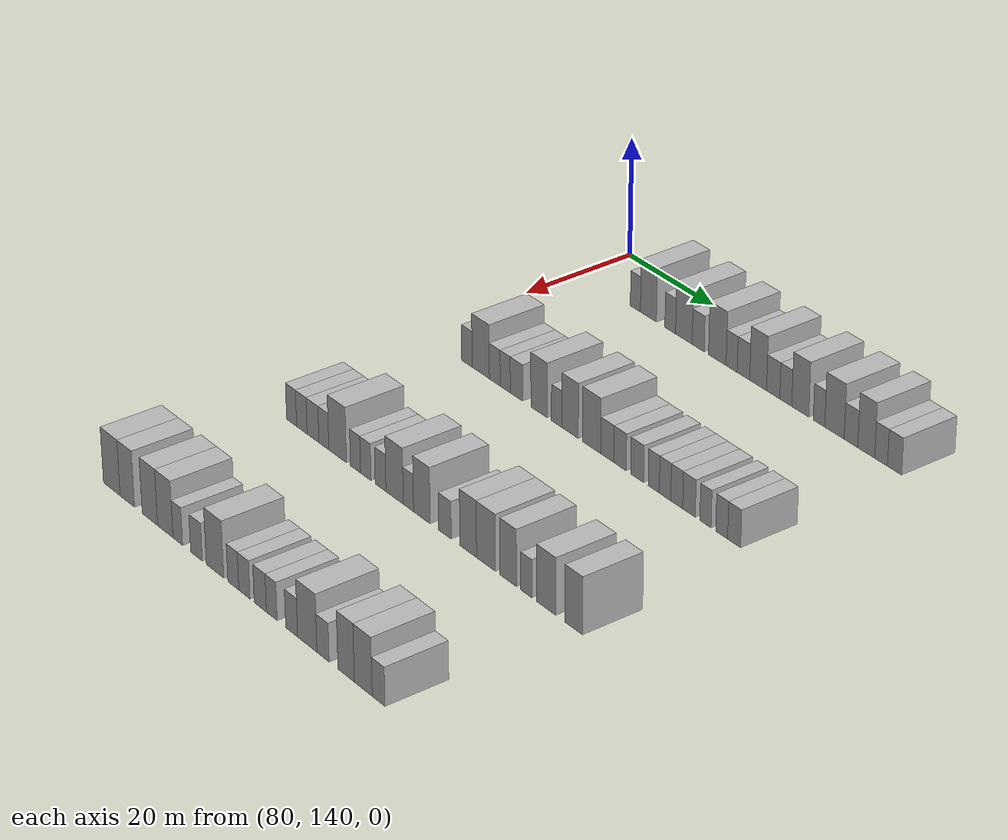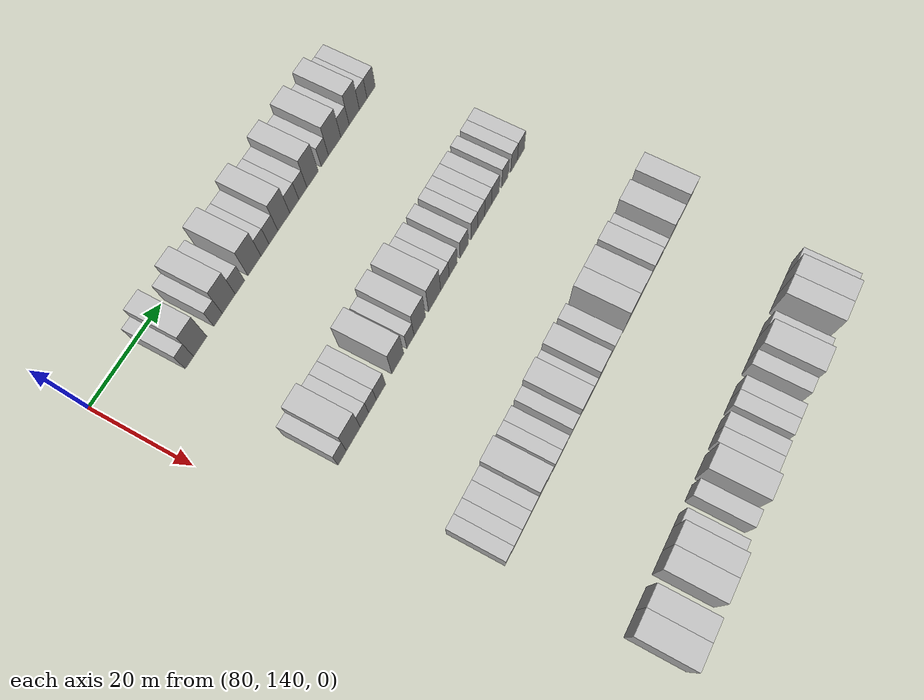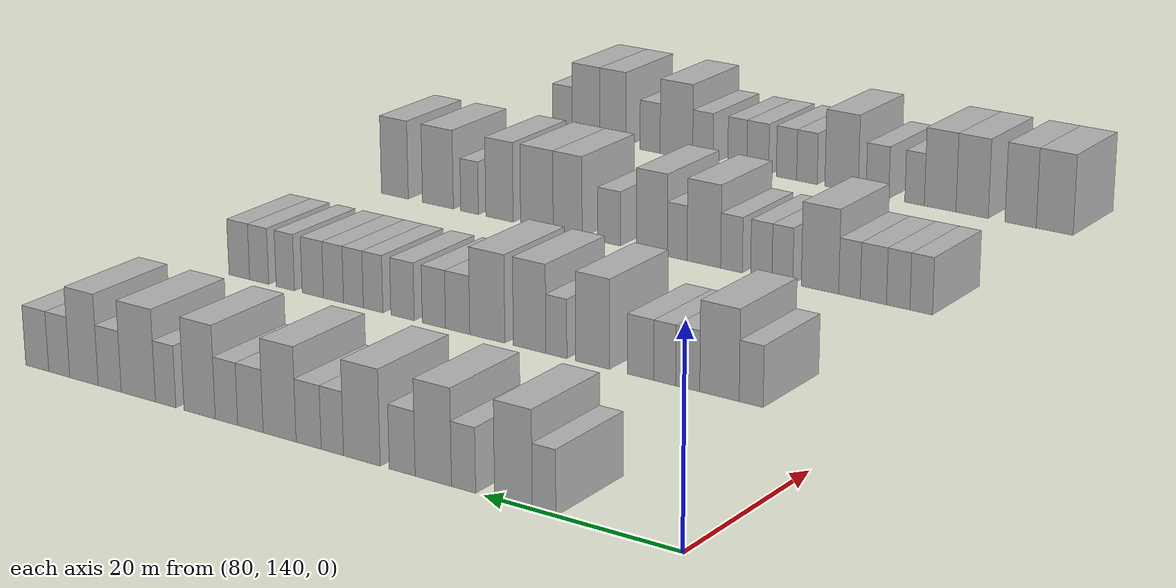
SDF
<sdf version="1.6">
 <world name="default">
  <model name="building_606">
   <static>1</static>
   <pose>85.0000 153.8145 0 0.000000 0.000000 0.000000</pose>
   <link name="link">
    <pose>0 0 3.00 0 0 0</pose>
    <collision name="collision"><geometry><box><size>10.0000 2.4219 6.0000</size></box></geometry></collision>
    <visual name="visual">
     <cast_shadows>0</cast_shadows>
     <geometry><box><size>10.0000 2.4219 6.0000</size></box></geometry>
     <material>
      <script>
       <uri>model://HANNAS_wall/materials/scripts</uri>
       <uri>model://HANNAS_wall/materials/textures</uri>
       <name>vrc/HANNAS_wall</name>
      </script>
     </material>
    </visual>
   </link>
  </model>
  <model name="building_607">
   <static>1</static>
   <pose>85.0000 156.9660 0 0.000000 0.000000 0.000000</pose>
   <link name="link">
    <pose>0 0 4.50 0 0 0</pose>
    <collision name="collision"><geometry><box><size>10.0000 3.8812 9.0000</size></box></geometry></collision>
    <visual name="visual">
     <cast_shadows>0</cast_shadows>
     <geometry><box><size>10.0000 3.8812 9.0000</size></box></geometry>
     <material>
      <script>
       <uri>model://HANNAS_wall/materials/scripts</uri>
       <uri>model://HANNAS_wall/materials/textures</uri>
       <name>vrc/HANNAS_wall</name>
      </script>
     </material>
    </visual>
   </link>
  </model>
  <model name="building_608">
   <static>1</static>
   <pose>85.0000 162.1799 0 0.000000 0.000000 0.000000</pose>
   <link name="link">
    <pose>0 0 3.00 0 0 0</pose>
    <collision name="collision"><geometry><box><size>10.0000 2.5465 6.0000</size></box></geometry></collision>
    <visual name="visual">
     <cast_shadows>0</cast_shadows>
     <geometry><box><size>10.0000 2.5465 6.0000</size></box></geometry>
     <material>
      <script>
       <uri>model://HANNAS_wall/materials/scripts</uri>
       <uri>model://HANNAS_wall/materials/textures</uri>
       <name>vrc/HANNAS_wall</name>
      </script>
     </material>
    </visual>
   </link>
  </model>
  <model name="building_609">
   <static>1</static>
   <pose>85.0000 165.4058 0 0.000000 0.000000 0.000000</pose>
   <link name="link">
    <pose>0 0 4.50 0 0 0</pose>
    <collision name="collision"><geometry><box><size>10.0000 3.9052 9.0000</size></box></geometry></collision>
    <visual name="visual">
     <cast_shadows>0</cast_shadows>
     <geometry><box><size>10.0000 3.9052 9.0000</size></box></geometry>
     <material>
      <script>
       <uri>model://HANNAS_wall/materials/scripts</uri>
       <uri>model://HANNAS_wall/materials/textures</uri>
       <name>vrc/HANNAS_wall</name>
      </script>
     </material>
    </visual>
   </link>
  </model>
  <model name="building_610">
   <static>1</static>
   <pose>85.0000 168.7690 0 0.000000 0.000000 0.000000</pose>
   <link name="link">
    <pose>0 0 3.00 0 0 0</pose>
    <collision name="collision"><geometry><box><size>10.0000 2.8212 6.0000</size></box></geometry></collision>
    <visual name="visual">
     <cast_shadows>0</cast_shadows>
     <geometry><box><size>10.0000 2.8212 6.0000</size></box></geometry>
     <material>
      <script>
       <uri>model://HANNAS_wall/materials/scripts</uri>
       <uri>model://HANNAS_wall/materials/textures</uri>
       <name>vrc/HANNAS_wall</name>
      </script>
     </material>
    </visual>
   </link>
  </model>
  <model name="building_611">
   <static>1</static>
   <pose>85.0000 173.2157 0 0.000000 0.000000 0.000000</pose>
   <link name="link">
    <pose>0 0 4.50 0 0 0</pose>
    <collision name="collision"><geometry><box><size>10.0000 4.0721 9.0000</size></box></geometry></collision>
    <visual name="visual">
     <cast_shadows>0</cast_shadows>
     <geometry><box><size>10.0000 4.0721 9.0000</size></box></geometry>
     <material>
      <script>
       <uri>model://HANNAS_wall/materials/scripts</uri>
       <uri>model://HANNAS_wall/materials/textures</uri>
       <name>vrc/HANNAS_wall</name>
      </script>
     </material>
    </visual>
   </link>
  </model>
  <model name="building_612">
   <static>1</static>
   <pose>85.0000 176.5106 0 0.000000 0.000000 0.000000</pose>
   <link name="link">
    <pose>0 0 3.00 0 0 0</pose>
    <collision name="collision"><geometry><box><size>10.0000 2.5177 6.0000</size></box></geometry></collision>
    <visual name="visual">
     <cast_shadows>0</cast_shadows>
     <geometry><box><size>10.0000 2.5177 6.0000</size></box></geometry>
     <material>
      <script>
       <uri>model://HANNAS_wall/materials/scripts</uri>
       <uri>model://HANNAS_wall/materials/textures</uri>
       <name>vrc/HANNAS_wall</name>
      </script>
     </material>
    </visual>
   </link>
  </model>
  <model name="building_613">
   <static>1</static>
   <pose>85.0000 179.1966 0 0.000000 0.000000 0.000000</pose>
   <link name="link">
    <pose>0 0 3.00 0 0 0</pose>
    <collision name="collision"><geometry><box><size>10.0000 2.8543 6.0000</size></box></geometry></collision>
    <visual name="visual">
     <cast_shadows>0</cast_shadows>
     <geometry><box><size>10.0000 2.8543 6.0000</size></box></geometry>
     <material>
      <script>
       <uri>model://HANNAS_wall/materials/scripts</uri>
       <uri>model://HANNAS_wall/materials/textures</uri>
       <name>vrc/HANNAS_wall</name>
      </script>
     </material>
    </visual>
   </link>
  </model>
  <model name="building_614">
   <static>1</static>
   <pose>85.0000 182.5298 0 0.000000 0.000000 0.000000</pose>
   <link name="link">
    <pose>0 0 4.50 0 0 0</pose>
    <collision name="collision"><geometry><box><size>10.0000 3.8122 9.0000</size></box></geometry></collision>
    <visual name="visual">
     <cast_shadows>0</cast_shadows>
     <geometry><box><size>10.0000 3.8122 9.0000</size></box></geometry>
     <material>
      <script>
       <uri>model://HANNAS_wall/materials/scripts</uri>
       <uri>model://HANNAS_wall/materials/textures</uri>
       <name>vrc/HANNAS_wall</name>
      </script>
     </material>
    </visual>
   </link>
  </model>
  <model name="building_615">
   <static>1</static>
   <pose>85.0000 185.9230 0 0.000000 0.000000 0.000000</pose>
   <link name="link">
    <pose>0 0 3.00 0 0 0</pose>
    <collision name="collision"><geometry><box><size>10.0000 2.9741 6.0000</size></box></geometry></collision>
    <visual name="visual">
     <cast_shadows>0</cast_shadows>
     <geometry><box><size>10.0000 2.9741 6.0000</size></box></geometry>
     <material>
      <script>
       <uri>model://HANNAS_wall/materials/scripts</uri>
       <uri>model://HANNAS_wall/materials/textures</uri>
       <name>vrc/HANNAS_wall</name>
      </script>
     </material>
    </visual>
   </link>
  </model>
  <model name="building_616">
   <static>1</static>
   <pose>85.0000 188.7408 0 0.000000 0.000000 0.000000</pose>
   <link name="link">
    <pose>0 0 3.00 0 0 0</pose>
    <collision name="collision"><geometry><box><size>10.0000 2.6615 6.0000</size></box></geometry></collision>
    <visual name="visual">
     <cast_shadows>0</cast_shadows>
     <geometry><box><size>10.0000 2.6615 6.0000</size></box></geometry>
     <material>
      <script>
       <uri>model://HANNAS_wall/materials/scripts</uri>
       <uri>model://HANNAS_wall/materials/textures</uri>
       <name>vrc/HANNAS_wall</name>
      </script>
     </material>
    </visual>
   </link>
  </model>
  <model name="building_617">
   <static>1</static>
   <pose>85.0000 191.9446 0 0.000000 0.000000 0.000000</pose>
   <link name="link">
    <pose>0 0 4.50 0 0 0</pose>
    <collision name="collision"><geometry><box><size>10.0000 3.7462 9.0000</size></box></geometry></collision>
    <visual name="visual">
     <cast_shadows>0</cast_shadows>
     <geometry><box><size>10.0000 3.7462 9.0000</size></box></geometry>
     <material>
      <script>
       <uri>model://HANNAS_wall/materials/scripts</uri>
       <uri>model://HANNAS_wall/materials/textures</uri>
       <name>vrc/HANNAS_wall</name>
      </script>
     </material>
    </visual>
   </link>
  </model>
  <model name="building_618">
   <static>1</static>
   <pose>85.0000 196.0615 0 0.000000 0.000000 0.000000</pose>
   <link name="link">
    <pose>0 0 3.00 0 0 0</pose>
    <collision name="collision"><geometry><box><size>10.0000 2.4877 6.0000</size></box></geometry></collision>
    <visual name="visual">
     <cast_shadows>0</cast_shadows>
     <geometry><box><size>10.0000 2.4877 6.0000</size></box></geometry>
     <material>
      <script>
       <uri>model://HANNAS_wall/materials/scripts</uri>
       <uri>model://HANNAS_wall/materials/textures</uri>
       <name>vrc/HANNAS_wall</name>
      </script>
     </material>
    </visual>
   </link>
  </model>
  <model name="building_619">
   <static>1</static>
   <pose>85.0000 199.4239 0 0.000000 0.000000 0.000000</pose>
   <link name="link">
    <pose>0 0 4.50 0 0 0</pose>
    <collision name="collision"><geometry><box><size>10.0000 4.2370 9.0000</size></box></geometry></collision>
    <visual name="visual">
     <cast_shadows>0</cast_shadows>
     <geometry><box><size>10.0000 4.2370 9.0000</size></box></geometry>
     <material>
      <script>
       <uri>model://HANNAS_wall/materials/scripts</uri>
       <uri>model://HANNAS_wall/materials/textures</uri>
       <name>vrc/HANNAS_wall</name>
      </script>
     </material>
    </visual>
   </link>
  </model>
  <model name="building_620">
   <static>1</static>
   <pose>85.0000 202.9900 0 0.000000 0.000000 0.000000</pose>
   <link name="link">
    <pose>0 0 3.00 0 0 0</pose>
    <collision name="collision"><geometry><box><size>10.0000 2.8953 6.0000</size></box></geometry></collision>
    <visual name="visual">
     <cast_shadows>0</cast_shadows>
     <geometry><box><size>10.0000 2.8953 6.0000</size></box></geometry>
     <material>
      <script>
       <uri>model://HANNAS_wall/materials/scripts</uri>
       <uri>model://HANNAS_wall/materials/textures</uri>
       <name>vrc/HANNAS_wall</name>
      </script>
     </material>
    </visual>
   </link>
  </model>
  <model name="building_621">
   <static>1</static>
   <pose>85.0000 206.2494 0 0.000000 0.000000 0.000000</pose>
   <link name="link">
    <pose>0 0 4.50 0 0 0</pose>
    <collision name="collision"><geometry><box><size>10.0000 3.6236 9.0000</size></box></geometry></collision>
    <visual name="visual">
     <cast_shadows>0</cast_shadows>
     <geometry><box><size>10.0000 3.6236 9.0000</size></box></geometry>
     <material>
      <script>
       <uri>model://HANNAS_wall/materials/scripts</uri>
       <uri>model://HANNAS_wall/materials/textures</uri>
       <name>vrc/HANNAS_wall</name>
      </script>
     </material>
    </visual>
   </link>
  </model>
  <model name="building_622">
   <static>1</static>
   <pose>85.0000 209.4123 0 0.000000 0.000000 0.000000</pose>
   <link name="link">
    <pose>0 0 3.00 0 0 0</pose>
    <collision name="collision"><geometry><box><size>10.0000 2.7021 6.0000</size></box></geometry></collision>
    <visual name="visual">
     <cast_shadows>0</cast_shadows>
     <geometry><box><size>10.0000 2.7021 6.0000</size></box></geometry>
     <material>
      <script>
       <uri>model://HANNAS_wall/materials/scripts</uri>
       <uri>model://HANNAS_wall/materials/textures</uri>
       <name>vrc/HANNAS_wall</name>
      </script>
     </material>
    </visual>
   </link>
  </model>
  <model name="building_623">
   <static>1</static>
   <pose>85.0000 212.2532 0 0.000000 0.000000 0.000000</pose>
   <link name="link">
    <pose>0 0 3.00 0 0 0</pose>
    <collision name="collision"><geometry><box><size>10.0000 2.9798 6.0000</size></box></geometry></collision>
    <visual name="visual">
     <cast_shadows>0</cast_shadows>
     <geometry><box><size>10.0000 2.9798 6.0000</size></box></geometry>
     <material>
      <script>
       <uri>model://HANNAS_wall/materials/scripts</uri>
       <uri>model://HANNAS_wall/materials/textures</uri>
       <name>vrc/HANNAS_wall</name>
      </script>
     </material>
    </visual>
   </link>
  </model>
  <model name="building_827">
   <static>1</static>
   <pose>115.0000 152.0088 0 0.000000 0.000000 0.000000</pose>
   <link name="link">
    <pose>0 0 3.00 0 0 0</pose>
    <collision name="collision"><geometry><box><size>10.0000 2.5604 6.0000</size></box></geometry></collision>
    <visual name="visual">
     <cast_shadows>0</cast_shadows>
     <geometry><box><size>10.0000 2.5604 6.0000</size></box></geometry>
     <material>
      <script>
       <uri>model://HANNAS_wall/materials/scripts</uri>
       <uri>model://HANNAS_wall/materials/textures</uri>
       <name>vrc/HANNAS_wall</name>
      </script>
     </material>
    </visual>
   </link>
  </model>
  <model name="building_828">
   <static>1</static>
   <pose>115.0000 155.4234 0 0.000000 0.000000 0.000000</pose>
   <link name="link">
    <pose>0 0 4.50 0 0 0</pose>
    <collision name="collision"><geometry><box><size>10.0000 4.2689 9.0000</size></box></geometry></collision>
    <visual name="visual">
     <cast_shadows>0</cast_shadows>
     <geometry><box><size>10.0000 4.2689 9.0000</size></box></geometry>
     <material>
      <script>
       <uri>model://HANNAS_wall/materials/scripts</uri>
       <uri>model://HANNAS_wall/materials/textures</uri>
       <name>vrc/HANNAS_wall</name>
      </script>
     </material>
    </visual>
   </link>
  </model>
  <model name="building_829">
   <static>1</static>
   <pose>115.0000 158.8772 0 0.000000 0.000000 0.000000</pose>
   <link name="link">
    <pose>0 0 3.00 0 0 0</pose>
    <collision name="collision"><geometry><box><size>10.0000 2.6388 6.0000</size></box></geometry></collision>
    <visual name="visual">
     <cast_shadows>0</cast_shadows>
     <geometry><box><size>10.0000 2.6388 6.0000</size></box></geometry>
     <material>
      <script>
       <uri>model://HANNAS_wall/materials/scripts</uri>
       <uri>model://HANNAS_wall/materials/textures</uri>
       <name>vrc/HANNAS_wall</name>
      </script>
     </material>
    </visual>
   </link>
  </model>
  <model name="building_830">
   <static>1</static>
   <pose>115.0000 161.4028 0 0.000000 0.000000 0.000000</pose>
   <link name="link">
    <pose>0 0 3.00 0 0 0</pose>
    <collision name="collision"><geometry><box><size>10.0000 2.4124 6.0000</size></box></geometry></collision>
    <visual name="visual">
     <cast_shadows>0</cast_shadows>
     <geometry><box><size>10.0000 2.4124 6.0000</size></box></geometry>
     <material>
      <script>
       <uri>model://HANNAS_wall/materials/scripts</uri>
       <uri>model://HANNAS_wall/materials/textures</uri>
       <name>vrc/HANNAS_wall</name>
      </script>
     </material>
    </visual>
   </link>
  </model>
  <model name="building_831">
   <static>1</static>
   <pose>115.0000 164.0922 0 0.000000 0.000000 0.000000</pose>
   <link name="link">
    <pose>0 0 3.00 0 0 0</pose>
    <collision name="collision"><geometry><box><size>10.0000 2.9664 6.0000</size></box></geometry></collision>
    <visual name="visual">
     <cast_shadows>0</cast_shadows>
     <geometry><box><size>10.0000 2.9664 6.0000</size></box></geometry>
     <material>
      <script>
       <uri>model://HANNAS_wall/materials/scripts</uri>
       <uri>model://HANNAS_wall/materials/textures</uri>
       <name>vrc/HANNAS_wall</name>
      </script>
     </material>
    </visual>
   </link>
  </model>
  <model name="building_832">
   <static>1</static>
   <pose>115.0000 169.5255 0 0.000000 0.000000 0.000000</pose>
   <link name="link">
    <pose>0 0 4.50 0 0 0</pose>
    <collision name="collision"><geometry><box><size>10.0000 3.9003 9.0000</size></box></geometry></collision>
    <visual name="visual">
     <cast_shadows>0</cast_shadows>
     <geometry><box><size>10.0000 3.9003 9.0000</size></box></geometry>
     <material>
      <script>
       <uri>model://HANNAS_wall/materials/scripts</uri>
       <uri>model://HANNAS_wall/materials/textures</uri>
       <name>vrc/HANNAS_wall</name>
      </script>
     </material>
    </visual>
   </link>
  </model>
  <model name="building_833">
   <static>1</static>
   <pose>115.0000 173.6977 0 0.000000 0.000000 0.000000</pose>
   <link name="link">
    <pose>0 0 3.00 0 0 0</pose>
    <collision name="collision"><geometry><box><size>10.0000 2.4441 6.0000</size></box></geometry></collision>
    <visual name="visual">
     <cast_shadows>0</cast_shadows>
     <geometry><box><size>10.0000 2.4441 6.0000</size></box></geometry>
     <material>
      <script>
       <uri>model://HANNAS_wall/materials/scripts</uri>
       <uri>model://HANNAS_wall/materials/textures</uri>
       <name>vrc/HANNAS_wall</name>
      </script>
     </material>
    </visual>
   </link>
  </model>
  <model name="building_834">
   <static>1</static>
   <pose>115.0000 176.8360 0 0.000000 0.000000 0.000000</pose>
   <link name="link">
    <pose>0 0 4.50 0 0 0</pose>
    <collision name="collision"><geometry><box><size>10.0000 3.8323 9.0000</size></box></geometry></collision>
    <visual name="visual">
     <cast_shadows>0</cast_shadows>
     <geometry><box><size>10.0000 3.8323 9.0000</size></box></geometry>
     <material>
      <script>
       <uri>model://HANNAS_wall/materials/scripts</uri>
       <uri>model://HANNAS_wall/materials/textures</uri>
       <name>vrc/HANNAS_wall</name>
      </script>
     </material>
    </visual>
   </link>
  </model>
  <model name="building_835">
   <static>1</static>
   <pose>115.0000 181.8553 0 0.000000 0.000000 0.000000</pose>
   <link name="link">
    <pose>0 0 4.50 0 0 0</pose>
    <collision name="collision"><geometry><box><size>10.0000 4.2064 9.0000</size></box></geometry></collision>
    <visual name="visual">
     <cast_shadows>0</cast_shadows>
     <geometry><box><size>10.0000 4.2064 9.0000</size></box></geometry>
     <material>
      <script>
       <uri>model://HANNAS_wall/materials/scripts</uri>
       <uri>model://HANNAS_wall/materials/textures</uri>
       <name>vrc/HANNAS_wall</name>
      </script>
     </material>
    </visual>
   </link>
  </model>
  <model name="building_836">
   <static>1</static>
   <pose>115.0000 185.4377 0 0.000000 0.000000 0.000000</pose>
   <link name="link">
    <pose>0 0 3.00 0 0 0</pose>
    <collision name="collision"><geometry><box><size>10.0000 2.9585 6.0000</size></box></geometry></collision>
    <visual name="visual">
     <cast_shadows>0</cast_shadows>
     <geometry><box><size>10.0000 2.9585 6.0000</size></box></geometry>
     <material>
      <script>
       <uri>model://HANNAS_wall/materials/scripts</uri>
       <uri>model://HANNAS_wall/materials/textures</uri>
       <name>vrc/HANNAS_wall</name>
      </script>
     </material>
    </visual>
   </link>
  </model>
  <model name="building_837">
   <static>1</static>
   <pose>115.0000 188.3402 0 0.000000 0.000000 0.000000</pose>
   <link name="link">
    <pose>0 0 3.00 0 0 0</pose>
    <collision name="collision"><geometry><box><size>10.0000 2.8465 6.0000</size></box></geometry></collision>
    <visual name="visual">
     <cast_shadows>0</cast_shadows>
     <geometry><box><size>10.0000 2.8465 6.0000</size></box></geometry>
     <material>
      <script>
       <uri>model://HANNAS_wall/materials/scripts</uri>
       <uri>model://HANNAS_wall/materials/textures</uri>
       <name>vrc/HANNAS_wall</name>
      </script>
     </material>
    </visual>
   </link>
  </model>
  <model name="building_838">
   <static>1</static>
   <pose>115.0000 192.2240 0 0.000000 0.000000 0.000000</pose>
   <link name="link">
    <pose>0 0 3.00 0 0 0</pose>
    <collision name="collision"><geometry><box><size>10.0000 2.9210 6.0000</size></box></geometry></collision>
    <visual name="visual">
     <cast_shadows>0</cast_shadows>
     <geometry><box><size>10.0000 2.9210 6.0000</size></box></geometry>
     <material>
      <script>
       <uri>model://HANNAS_wall/materials/scripts</uri>
       <uri>model://HANNAS_wall/materials/textures</uri>
       <name>vrc/HANNAS_wall</name>
      </script>
     </material>
    </visual>
   </link>
  </model>
  <model name="building_839">
   <static>1</static>
   <pose>115.0000 195.9219 0 0.000000 0.000000 0.000000</pose>
   <link name="link">
    <pose>0 0 3.00 0 0 0</pose>
    <collision name="collision"><geometry><box><size>10.0000 2.4748 6.0000</size></box></geometry></collision>
    <visual name="visual">
     <cast_shadows>0</cast_shadows>
     <geometry><box><size>10.0000 2.4748 6.0000</size></box></geometry>
     <material>
      <script>
       <uri>model://HANNAS_wall/materials/scripts</uri>
       <uri>model://HANNAS_wall/materials/textures</uri>
       <name>vrc/HANNAS_wall</name>
      </script>
     </material>
    </visual>
   </link>
  </model>
  <model name="building_840">
   <static>1</static>
   <pose>115.0000 198.4225 0 0.000000 0.000000 0.000000</pose>
   <link name="link">
    <pose>0 0 3.00 0 0 0</pose>
    <collision name="collision"><geometry><box><size>10.0000 2.5263 6.0000</size></box></geometry></collision>
    <visual name="visual">
     <cast_shadows>0</cast_shadows>
     <geometry><box><size>10.0000 2.5263 6.0000</size></box></geometry>
     <material>
      <script>
       <uri>model://HANNAS_wall/materials/scripts</uri>
       <uri>model://HANNAS_wall/materials/textures</uri>
       <name>vrc/HANNAS_wall</name>
      </script>
     </material>
    </visual>
   </link>
  </model>
  <model name="building_841">
   <static>1</static>
   <pose>115.0000 200.9807 0 0.000000 0.000000 0.000000</pose>
   <link name="link">
    <pose>0 0 3.00 0 0 0</pose>
    <collision name="collision"><geometry><box><size>10.0000 2.5902 6.0000</size></box></geometry></collision>
    <visual name="visual">
     <cast_shadows>0</cast_shadows>
     <geometry><box><size>10.0000 2.5902 6.0000</size></box></geometry>
     <material>
      <script>
       <uri>model://HANNAS_wall/materials/scripts</uri>
       <uri>model://HANNAS_wall/materials/textures</uri>
       <name>vrc/HANNAS_wall</name>
      </script>
     </material>
    </visual>
   </link>
  </model>
  <model name="building_842">
   <static>1</static>
   <pose>115.0000 203.6664 0 0.000000 0.000000 0.000000</pose>
   <link name="link">
    <pose>0 0 3.00 0 0 0</pose>
    <collision name="collision"><geometry><box><size>10.0000 2.7810 6.0000</size></box></geometry></collision>
    <visual name="visual">
     <cast_shadows>0</cast_shadows>
     <geometry><box><size>10.0000 2.7810 6.0000</size></box></geometry>
     <material>
      <script>
       <uri>model://HANNAS_wall/materials/scripts</uri>
       <uri>model://HANNAS_wall/materials/textures</uri>
       <name>vrc/HANNAS_wall</name>
      </script>
     </material>
    </visual>
   </link>
  </model>
  <model name="building_843">
   <static>1</static>
   <pose>115.0000 207.2661 0 0.000000 0.000000 0.000000</pose>
   <link name="link">
    <pose>0 0 3.00 0 0 0</pose>
    <collision name="collision"><geometry><box><size>10.0000 2.4184 6.0000</size></box></geometry></collision>
    <visual name="visual">
     <cast_shadows>0</cast_shadows>
     <geometry><box><size>10.0000 2.4184 6.0000</size></box></geometry>
     <material>
      <script>
       <uri>model://HANNAS_wall/materials/scripts</uri>
       <uri>model://HANNAS_wall/materials/textures</uri>
       <name>vrc/HANNAS_wall</name>
      </script>
     </material>
    </visual>
   </link>
  </model>
  <model name="building_844">
   <static>1</static>
   <pose>115.0000 210.7465 0 0.000000 0.000000 0.000000</pose>
   <link name="link">
    <pose>0 0 3.00 0 0 0</pose>
    <collision name="collision"><geometry><box><size>10.0000 2.5424 6.0000</size></box></geometry></collision>
    <visual name="visual">
     <cast_shadows>0</cast_shadows>
     <geometry><box><size>10.0000 2.5424 6.0000</size></box></geometry>
     <material>
      <script>
       <uri>model://HANNAS_wall/materials/scripts</uri>
       <uri>model://HANNAS_wall/materials/textures</uri>
       <name>vrc/HANNAS_wall</name>
      </script>
     </material>
    </visual>
   </link>
  </model>
  <model name="building_845">
   <static>1</static>
   <pose>115.0000 213.4035 0 0.000000 0.000000 0.000000</pose>
   <link name="link">
    <pose>0 0 3.00 0 0 0</pose>
    <collision name="collision"><geometry><box><size>10.0000 2.7715 6.0000</size></box></geometry></collision>
    <visual name="visual">
     <cast_shadows>0</cast_shadows>
     <geometry><box><size>10.0000 2.7715 6.0000</size></box></geometry>
     <material>
      <script>
       <uri>model://HANNAS_wall/materials/scripts</uri>
       <uri>model://HANNAS_wall/materials/textures</uri>
       <name>vrc/HANNAS_wall</name>
      </script>
     </material>
    </visual>
   </link>
  </model>
  <model name="building_1069">
   <static>1</static>
   <pose>145.0000 150.6819 0 0.000000 0.000000 0.000000</pose>
   <link name="link">
    <pose>0 0 3.00 0 0 0</pose>
    <collision name="collision"><geometry><box><size>10.0000 2.5353 6.0000</size></box></geometry></collision>
    <visual name="visual">
     <cast_shadows>0</cast_shadows>
     <geometry><box><size>10.0000 2.5353 6.0000</size></box></geometry>
     <material>
      <script>
       <uri>model://HANNAS_wall/materials/scripts</uri>
       <uri>model://HANNAS_wall/materials/textures</uri>
       <name>vrc/HANNAS_wall</name>
      </script>
     </material>
    </visual>
   </link>
  </model>
  <model name="building_1070">
   <static>1</static>
   <pose>145.0000 153.2739 0 0.000000 0.000000 0.000000</pose>
   <link name="link">
    <pose>0 0 3.00 0 0 0</pose>
    <collision name="collision"><geometry><box><size>10.0000 2.6487 6.0000</size></box></geometry></collision>
    <visual name="visual">
     <cast_shadows>0</cast_shadows>
     <geometry><box><size>10.0000 2.6487 6.0000</size></box></geometry>
     <material>
      <script>
       <uri>model://HANNAS_wall/materials/scripts</uri>
       <uri>model://HANNAS_wall/materials/textures</uri>
       <name>vrc/HANNAS_wall</name>
      </script>
     </material>
    </visual>
   </link>
  </model>
  <model name="building_1071">
   <static>1</static>
   <pose>145.0000 156.0943 0 0.000000 0.000000 0.000000</pose>
   <link name="link">
    <pose>0 0 3.00 0 0 0</pose>
    <collision name="collision"><geometry><box><size>10.0000 2.9921 6.0000</size></box></geometry></collision>
    <visual name="visual">
     <cast_shadows>0</cast_shadows>
     <geometry><box><size>10.0000 2.9921 6.0000</size></box></geometry>
     <material>
      <script>
       <uri>model://HANNAS_wall/materials/scripts</uri>
       <uri>model://HANNAS_wall/materials/textures</uri>
       <name>vrc/HANNAS_wall</name>
      </script>
     </material>
    </visual>
   </link>
  </model>
  <model name="building_1072">
   <static>1</static>
   <pose>145.0000 158.8285 0 0.000000 0.000000 0.000000</pose>
   <link name="link">
    <pose>0 0 3.00 0 0 0</pose>
    <collision name="collision"><geometry><box><size>10.0000 2.4765 6.0000</size></box></geometry></collision>
    <visual name="visual">
     <cast_shadows>0</cast_shadows>
     <geometry><box><size>10.0000 2.4765 6.0000</size></box></geometry>
     <material>
      <script>
       <uri>model://HANNAS_wall/materials/scripts</uri>
       <uri>model://HANNAS_wall/materials/textures</uri>
       <name>vrc/HANNAS_wall</name>
      </script>
     </material>
    </visual>
   </link>
  </model>
  <model name="building_1073">
   <static>1</static>
   <pose>145.0000 162.2553 0 0.000000 0.000000 0.000000</pose>
   <link name="link">
    <pose>0 0 4.50 0 0 0</pose>
    <collision name="collision"><geometry><box><size>10.0000 4.3771 9.0000</size></box></geometry></collision>
    <visual name="visual">
     <cast_shadows>0</cast_shadows>
     <geometry><box><size>10.0000 4.3771 9.0000</size></box></geometry>
     <material>
      <script>
       <uri>model://HANNAS_wall/materials/scripts</uri>
       <uri>model://HANNAS_wall/materials/textures</uri>
       <name>vrc/HANNAS_wall</name>
      </script>
     </material>
    </visual>
   </link>
  </model>
  <model name="building_1074">
   <static>1</static>
   <pose>145.0000 166.6799 0 0.000000 0.000000 0.000000</pose>
   <link name="link">
    <pose>0 0 3.00 0 0 0</pose>
    <collision name="collision"><geometry><box><size>10.0000 2.4722 6.0000</size></box></geometry></collision>
    <visual name="visual">
     <cast_shadows>0</cast_shadows>
     <geometry><box><size>10.0000 2.4722 6.0000</size></box></geometry>
     <material>
      <script>
       <uri>model://HANNAS_wall/materials/scripts</uri>
       <uri>model://HANNAS_wall/materials/textures</uri>
       <name>vrc/HANNAS_wall</name>
      </script>
     </material>
    </visual>
   </link>
  </model>
  <model name="building_1075">
   <static>1</static>
   <pose>145.0000 169.1932 0 0.000000 0.000000 0.000000</pose>
   <link name="link">
    <pose>0 0 3.00 0 0 0</pose>
    <collision name="collision"><geometry><box><size>10.0000 2.5543 6.0000</size></box></geometry></collision>
    <visual name="visual">
     <cast_shadows>0</cast_shadows>
     <geometry><box><size>10.0000 2.5543 6.0000</size></box></geometry>
     <material>
      <script>
       <uri>model://HANNAS_wall/materials/scripts</uri>
       <uri>model://HANNAS_wall/materials/textures</uri>
       <name>vrc/HANNAS_wall</name>
      </script>
     </material>
    </visual>
   </link>
  </model>
  <model name="building_1076">
   <static>1</static>
   <pose>145.0000 172.7792 0 0.000000 0.000000 0.000000</pose>
   <link name="link">
    <pose>0 0 3.00 0 0 0</pose>
    <collision name="collision"><geometry><box><size>10.0000 2.6177 6.0000</size></box></geometry></collision>
    <visual name="visual">
     <cast_shadows>0</cast_shadows>
     <geometry><box><size>10.0000 2.6177 6.0000</size></box></geometry>
     <material>
      <script>
       <uri>model://HANNAS_wall/materials/scripts</uri>
       <uri>model://HANNAS_wall/materials/textures</uri>
       <name>vrc/HANNAS_wall</name>
      </script>
     </material>
    </visual>
   </link>
  </model>
  <model name="building_1077">
   <static>1</static>
   <pose>145.0000 176.1560 0 0.000000 0.000000 0.000000</pose>
   <link name="link">
    <pose>0 0 4.50 0 0 0</pose>
    <collision name="collision"><geometry><box><size>10.0000 4.1360 9.0000</size></box></geometry></collision>
    <visual name="visual">
     <cast_shadows>0</cast_shadows>
     <geometry><box><size>10.0000 4.1360 9.0000</size></box></geometry>
     <material>
      <script>
       <uri>model://HANNAS_wall/materials/scripts</uri>
       <uri>model://HANNAS_wall/materials/textures</uri>
       <name>vrc/HANNAS_wall</name>
      </script>
     </material>
    </visual>
   </link>
  </model>
  <model name="building_1078">
   <static>1</static>
   <pose>145.0000 179.4456 0 0.000000 0.000000 0.000000</pose>
   <link name="link">
    <pose>0 0 3.00 0 0 0</pose>
    <collision name="collision"><geometry><box><size>10.0000 2.4434 6.0000</size></box></geometry></collision>
    <visual name="visual">
     <cast_shadows>0</cast_shadows>
     <geometry><box><size>10.0000 2.4434 6.0000</size></box></geometry>
     <material>
      <script>
       <uri>model://HANNAS_wall/materials/scripts</uri>
       <uri>model://HANNAS_wall/materials/textures</uri>
       <name>vrc/HANNAS_wall</name>
      </script>
     </material>
    </visual>
   </link>
  </model>
  <model name="building_1079">
   <static>1</static>
   <pose>145.0000 182.6181 0 0.000000 0.000000 0.000000</pose>
   <link name="link">
    <pose>0 0 4.50 0 0 0</pose>
    <collision name="collision"><geometry><box><size>10.0000 3.9016 9.0000</size></box></geometry></collision>
    <visual name="visual">
     <cast_shadows>0</cast_shadows>
     <geometry><box><size>10.0000 3.9016 9.0000</size></box></geometry>
     <material>
      <script>
       <uri>model://HANNAS_wall/materials/scripts</uri>
       <uri>model://HANNAS_wall/materials/textures</uri>
       <name>vrc/HANNAS_wall</name>
      </script>
     </material>
    </visual>
   </link>
  </model>
  <model name="building_1080">
   <static>1</static>
   <pose>145.0000 188.0253 0 0.000000 0.000000 0.000000</pose>
   <link name="link">
    <pose>0 0 3.00 0 0 0</pose>
    <collision name="collision"><geometry><box><size>10.0000 2.9129 6.0000</size></box></geometry></collision>
    <visual name="visual">
     <cast_shadows>0</cast_shadows>
     <geometry><box><size>10.0000 2.9129 6.0000</size></box></geometry>
     <material>
      <script>
       <uri>model://HANNAS_wall/materials/scripts</uri>
       <uri>model://HANNAS_wall/materials/textures</uri>
       <name>vrc/HANNAS_wall</name>
      </script>
     </material>
    </visual>
   </link>
  </model>
  <model name="building_1081">
   <static>1</static>
   <pose>145.0000 193.3733 0 0.000000 0.000000 0.000000</pose>
   <link name="link">
    <pose>0 0 4.50 0 0 0</pose>
    <collision name="collision"><geometry><box><size>10.0000 3.7829 9.0000</size></box></geometry></collision>
    <visual name="visual">
     <cast_shadows>0</cast_shadows>
     <geometry><box><size>10.0000 3.7829 9.0000</size></box></geometry>
     <material>
      <script>
       <uri>model://HANNAS_wall/materials/scripts</uri>
       <uri>model://HANNAS_wall/materials/textures</uri>
       <name>vrc/HANNAS_wall</name>
      </script>
     </material>
    </visual>
   </link>
  </model>
  <model name="building_1082">
   <static>1</static>
   <pose>145.0000 197.4160 0 0.000000 0.000000 0.000000</pose>
   <link name="link">
    <pose>0 0 4.50 0 0 0</pose>
    <collision name="collision"><geometry><box><size>10.0000 4.3026 9.0000</size></box></geometry></collision>
    <visual name="visual">
     <cast_shadows>0</cast_shadows>
     <geometry><box><size>10.0000 4.3026 9.0000</size></box></geometry>
     <material>
      <script>
       <uri>model://HANNAS_wall/materials/scripts</uri>
       <uri>model://HANNAS_wall/materials/textures</uri>
       <name>vrc/HANNAS_wall</name>
      </script>
     </material>
    </visual>
   </link>
  </model>
  <model name="building_1083">
   <static>1</static>
   <pose>145.0000 202.4035 0 0.000000 0.000000 0.000000</pose>
   <link name="link">
    <pose>0 0 4.50 0 0 0</pose>
    <collision name="collision"><geometry><box><size>10.0000 3.6722 9.0000</size></box></geometry></collision>
    <visual name="visual">
     <cast_shadows>0</cast_shadows>
     <geometry><box><size>10.0000 3.6722 9.0000</size></box></geometry>
     <material>
      <script>
       <uri>model://HANNAS_wall/materials/scripts</uri>
       <uri>model://HANNAS_wall/materials/textures</uri>
       <name>vrc/HANNAS_wall</name>
      </script>
     </material>
    </visual>
   </link>
  </model>
  <model name="building_1084">
   <static>1</static>
   <pose>145.0000 206.4470 0 0.000000 0.000000 0.000000</pose>
   <link name="link">
    <pose>0 0 3.00 0 0 0</pose>
    <collision name="collision"><geometry><box><size>10.0000 2.4149 6.0000</size></box></geometry></collision>
    <visual name="visual">
     <cast_shadows>0</cast_shadows>
     <geometry><box><size>10.0000 2.4149 6.0000</size></box></geometry>
     <material>
      <script>
       <uri>model://HANNAS_wall/materials/scripts</uri>
       <uri>model://HANNAS_wall/materials/textures</uri>
       <name>vrc/HANNAS_wall</name>
      </script>
     </material>
    </visual>
   </link>
  </model>
  <model name="building_1085">
   <static>1</static>
   <pose>145.0000 210.7822 0 0.000000 0.000000 0.000000</pose>
   <link name="link">
    <pose>0 0 4.50 0 0 0</pose>
    <collision name="collision"><geometry><box><size>10.0000 4.2554 9.0000</size></box></geometry></collision>
    <visual name="visual">
     <cast_shadows>0</cast_shadows>
     <geometry><box><size>10.0000 4.2554 9.0000</size></box></geometry>
     <material>
      <script>
       <uri>model://HANNAS_wall/materials/scripts</uri>
       <uri>model://HANNAS_wall/materials/textures</uri>
       <name>vrc/HANNAS_wall</name>
      </script>
     </material>
    </visual>
   </link>
  </model>
  <model name="building_1086">
   <static>1</static>
   <pose>145.0000 216.7947 0 0.000000 0.000000 0.000000</pose>
   <link name="link">
    <pose>0 0 4.50 0 0 0</pose>
    <collision name="collision"><geometry><box><size>10.0000 3.7696 9.0000</size></box></geometry></collision>
    <visual name="visual">
     <cast_shadows>0</cast_shadows>
     <geometry><box><size>10.0000 3.7696 9.0000</size></box></geometry>
     <material>
      <script>
       <uri>model://HANNAS_wall/materials/scripts</uri>
       <uri>model://HANNAS_wall/materials/textures</uri>
       <name>vrc/HANNAS_wall</name>
      </script>
     </material>
    </visual>
   </link>
  </model>
  <model name="building_1296">
   <static>1</static>
   <pose>175.0000 150.6927 0 0.000000 0.000000 0.000000</pose>
   <link name="link">
    <pose>0 0 4.50 0 0 0</pose>
    <collision name="collision"><geometry><box><size>10.0000 4.3490 9.0000</size></box></geometry></collision>
    <visual name="visual">
     <cast_shadows>0</cast_shadows>
     <geometry><box><size>10.0000 4.3490 9.0000</size></box></geometry>
     <material>
      <script>
       <uri>model://HANNAS_wall/materials/scripts</uri>
       <uri>model://HANNAS_wall/materials/textures</uri>
       <name>vrc/HANNAS_wall</name>
      </script>
     </material>
    </visual>
   </link>
  </model>
  <model name="building_1297">
   <static>1</static>
   <pose>175.0000 154.7404 0 0.000000 0.000000 0.000000</pose>
   <link name="link">
    <pose>0 0 4.50 0 0 0</pose>
    <collision name="collision"><geometry><box><size>10.0000 3.7464 9.0000</size></box></geometry></collision>
    <visual name="visual">
     <cast_shadows>0</cast_shadows>
     <geometry><box><size>10.0000 3.7464 9.0000</size></box></geometry>
     <material>
      <script>
       <uri>model://HANNAS_wall/materials/scripts</uri>
       <uri>model://HANNAS_wall/materials/textures</uri>
       <name>vrc/HANNAS_wall</name>
      </script>
     </material>
    </visual>
   </link>
  </model>
  <model name="building_1298">
   <static>1</static>
   <pose>175.0000 160.5889 0 0.000000 0.000000 0.000000</pose>
   <link name="link">
    <pose>0 0 4.50 0 0 0</pose>
    <collision name="collision"><geometry><box><size>10.0000 3.9507 9.0000</size></box></geometry></collision>
    <visual name="visual">
     <cast_shadows>0</cast_shadows>
     <geometry><box><size>10.0000 3.9507 9.0000</size></box></geometry>
     <material>
      <script>
       <uri>model://HANNAS_wall/materials/scripts</uri>
       <uri>model://HANNAS_wall/materials/textures</uri>
       <name>vrc/HANNAS_wall</name>
      </script>
     </material>
    </visual>
   </link>
  </model>
  <model name="building_1299">
   <static>1</static>
   <pose>175.0000 164.5133 0 0.000000 0.000000 0.000000</pose>
   <link name="link">
    <pose>0 0 4.50 0 0 0</pose>
    <collision name="collision"><geometry><box><size>10.0000 3.8980 9.0000</size></box></geometry></collision>
    <visual name="visual">
     <cast_shadows>0</cast_shadows>
     <geometry><box><size>10.0000 3.8980 9.0000</size></box></geometry>
     <material>
      <script>
       <uri>model://HANNAS_wall/materials/scripts</uri>
       <uri>model://HANNAS_wall/materials/textures</uri>
       <name>vrc/HANNAS_wall</name>
      </script>
     </material>
    </visual>
   </link>
  </model>
  <model name="building_1300">
   <static>1</static>
   <pose>175.0000 167.6797 0 0.000000 0.000000 0.000000</pose>
   <link name="link">
    <pose>0 0 3.00 0 0 0</pose>
    <collision name="collision"><geometry><box><size>10.0000 2.4348 6.0000</size></box></geometry></collision>
    <visual name="visual">
     <cast_shadows>0</cast_shadows>
     <geometry><box><size>10.0000 2.4348 6.0000</size></box></geometry>
     <material>
      <script>
       <uri>model://HANNAS_wall/materials/scripts</uri>
       <uri>model://HANNAS_wall/materials/textures</uri>
       <name>vrc/HANNAS_wall</name>
      </script>
     </material>
    </visual>
   </link>
  </model>
  <model name="building_1301">
   <static>1</static>
   <pose>175.0000 172.3462 0 0.000000 0.000000 0.000000</pose>
   <link name="link">
    <pose>0 0 3.00 0 0 0</pose>
    <collision name="collision"><geometry><box><size>10.0000 2.8982 6.0000</size></box></geometry></collision>
    <visual name="visual">
     <cast_shadows>0</cast_shadows>
     <geometry><box><size>10.0000 2.8982 6.0000</size></box></geometry>
     <material>
      <script>
       <uri>model://HANNAS_wall/materials/scripts</uri>
       <uri>model://HANNAS_wall/materials/textures</uri>
       <name>vrc/HANNAS_wall</name>
      </script>
     </material>
    </visual>
   </link>
  </model>
  <model name="building_1302">
   <static>1</static>
   <pose>175.0000 176.9399 0 0.000000 0.000000 0.000000</pose>
   <link name="link">
    <pose>0 0 4.50 0 0 0</pose>
    <collision name="collision"><geometry><box><size>10.0000 4.2893 9.0000</size></box></geometry></collision>
    <visual name="visual">
     <cast_shadows>0</cast_shadows>
     <geometry><box><size>10.0000 4.2893 9.0000</size></box></geometry>
     <material>
      <script>
       <uri>model://HANNAS_wall/materials/scripts</uri>
       <uri>model://HANNAS_wall/materials/textures</uri>
       <name>vrc/HANNAS_wall</name>
      </script>
     </material>
    </visual>
   </link>
  </model>
  <model name="building_1303">
   <static>1</static>
   <pose>175.0000 181.4256 0 0.000000 0.000000 0.000000</pose>
   <link name="link">
    <pose>0 0 3.00 0 0 0</pose>
    <collision name="collision"><geometry><box><size>10.0000 2.6821 6.0000</size></box></geometry></collision>
    <visual name="visual">
     <cast_shadows>0</cast_shadows>
     <geometry><box><size>10.0000 2.6821 6.0000</size></box></geometry>
     <material>
      <script>
       <uri>model://HANNAS_wall/materials/scripts</uri>
       <uri>model://HANNAS_wall/materials/textures</uri>
       <name>vrc/HANNAS_wall</name>
      </script>
     </material>
    </visual>
   </link>
  </model>
  <model name="building_1304">
   <static>1</static>
   <pose>175.0000 184.1106 0 0.000000 0.000000 0.000000</pose>
   <link name="link">
    <pose>0 0 3.00 0 0 0</pose>
    <collision name="collision"><geometry><box><size>10.0000 2.6879 6.0000</size></box></geometry></collision>
    <visual name="visual">
     <cast_shadows>0</cast_shadows>
     <geometry><box><size>10.0000 2.6879 6.0000</size></box></geometry>
     <material>
      <script>
       <uri>model://HANNAS_wall/materials/scripts</uri>
       <uri>model://HANNAS_wall/materials/textures</uri>
       <name>vrc/HANNAS_wall</name>
      </script>
     </material>
    </visual>
   </link>
  </model>
  <model name="building_1305">
   <static>1</static>
   <pose>175.0000 187.9131 0 0.000000 0.000000 0.000000</pose>
   <link name="link">
    <pose>0 0 3.00 0 0 0</pose>
    <collision name="collision"><geometry><box><size>10.0000 2.9170 6.0000</size></box></geometry></collision>
    <visual name="visual">
     <cast_shadows>0</cast_shadows>
     <geometry><box><size>10.0000 2.9170 6.0000</size></box></geometry>
     <material>
      <script>
       <uri>model://HANNAS_wall/materials/scripts</uri>
       <uri>model://HANNAS_wall/materials/textures</uri>
       <name>vrc/HANNAS_wall</name>
      </script>
     </material>
    </visual>
   </link>
  </model>
  <model name="building_1306">
   <static>1</static>
   <pose>175.0000 190.6502 0 0.000000 0.000000 0.000000</pose>
   <link name="link">
    <pose>0 0 3.00 0 0 0</pose>
    <collision name="collision"><geometry><box><size>10.0000 2.5572 6.0000</size></box></geometry></collision>
    <visual name="visual">
     <cast_shadows>0</cast_shadows>
     <geometry><box><size>10.0000 2.5572 6.0000</size></box></geometry>
     <material>
      <script>
       <uri>model://HANNAS_wall/materials/scripts</uri>
       <uri>model://HANNAS_wall/materials/textures</uri>
       <name>vrc/HANNAS_wall</name>
      </script>
     </material>
    </visual>
   </link>
  </model>
  <model name="building_1307">
   <static>1</static>
   <pose>175.0000 195.3207 0 0.000000 0.000000 0.000000</pose>
   <link name="link">
    <pose>0 0 3.00 0 0 0</pose>
    <collision name="collision"><geometry><box><size>10.0000 2.7836 6.0000</size></box></geometry></collision>
    <visual name="visual">
     <cast_shadows>0</cast_shadows>
     <geometry><box><size>10.0000 2.7836 6.0000</size></box></geometry>
     <material>
      <script>
       <uri>model://HANNAS_wall/materials/scripts</uri>
       <uri>model://HANNAS_wall/materials/textures</uri>
       <name>vrc/HANNAS_wall</name>
      </script>
     </material>
    </visual>
   </link>
  </model>
  <model name="building_1308">
   <static>1</static>
   <pose>175.0000 198.9566 0 0.000000 0.000000 0.000000</pose>
   <link name="link">
    <pose>0 0 4.50 0 0 0</pose>
    <collision name="collision"><geometry><box><size>10.0000 4.4883 9.0000</size></box></geometry></collision>
    <visual name="visual">
     <cast_shadows>0</cast_shadows>
     <geometry><box><size>10.0000 4.4883 9.0000</size></box></geometry>
     <material>
      <script>
       <uri>model://HANNAS_wall/materials/scripts</uri>
       <uri>model://HANNAS_wall/materials/textures</uri>
       <name>vrc/HANNAS_wall</name>
      </script>
     </material>
    </visual>
   </link>
  </model>
  <model name="building_1309">
   <static>1</static>
   <pose>175.0000 202.6013 0 0.000000 0.000000 0.000000</pose>
   <link name="link">
    <pose>0 0 3.00 0 0 0</pose>
    <collision name="collision"><geometry><box><size>10.0000 2.8011 6.0000</size></box></geometry></collision>
    <visual name="visual">
     <cast_shadows>0</cast_shadows>
     <geometry><box><size>10.0000 2.8011 6.0000</size></box></geometry>
     <material>
      <script>
       <uri>model://HANNAS_wall/materials/scripts</uri>
       <uri>model://HANNAS_wall/materials/textures</uri>
       <name>vrc/HANNAS_wall</name>
      </script>
     </material>
    </visual>
   </link>
  </model>
  <model name="building_1310">
   <static>1</static>
   <pose>175.0000 207.8575 0 0.000000 0.000000 0.000000</pose>
   <link name="link">
    <pose>0 0 4.50 0 0 0</pose>
    <collision name="collision"><geometry><box><size>10.0000 3.7113 9.0000</size></box></geometry></collision>
    <visual name="visual">
     <cast_shadows>0</cast_shadows>
     <geometry><box><size>10.0000 3.7113 9.0000</size></box></geometry>
     <material>
      <script>
       <uri>model://HANNAS_wall/materials/scripts</uri>
       <uri>model://HANNAS_wall/materials/textures</uri>
       <name>vrc/HANNAS_wall</name>
      </script>
     </material>
    </visual>
   </link>
  </model>
  <model name="building_1311">
   <static>1</static>
   <pose>175.0000 211.7035 0 0.000000 0.000000 0.000000</pose>
   <link name="link">
    <pose>0 0 4.50 0 0 0</pose>
    <collision name="collision"><geometry><box><size>10.0000 3.9807 9.0000</size></box></geometry></collision>
    <visual name="visual">
     <cast_shadows>0</cast_shadows>
     <geometry><box><size>10.0000 3.9807 9.0000</size></box></geometry>
     <material>
      <script>
       <uri>model://HANNAS_wall/materials/scripts</uri>
       <uri>model://HANNAS_wall/materials/textures</uri>
       <name>vrc/HANNAS_wall</name>
      </script>
     </material>
    </visual>
   </link>
  </model>
  <model name="building_1312">
   <static>1</static>
   <pose>175.0000 215.1108 0 0.000000 0.000000 0.000000</pose>
   <link name="link">
    <pose>0 0 3.00 0 0 0</pose>
    <collision name="collision"><geometry><box><size>10.0000 2.8340 6.0000</size></box></geometry></collision>
    <visual name="visual">
     <cast_shadows>0</cast_shadows>
     <geometry><box><size>10.0000 2.8340 6.0000</size></box></geometry>
     <material>
      <script>
       <uri>model://HANNAS_wall/materials/scripts</uri>
       <uri>model://HANNAS_wall/materials/textures</uri>
       <name>vrc/HANNAS_wall</name>
      </script>
     </material>
    </visual>
   </link>
  </model>
 </world>
</sdf>
